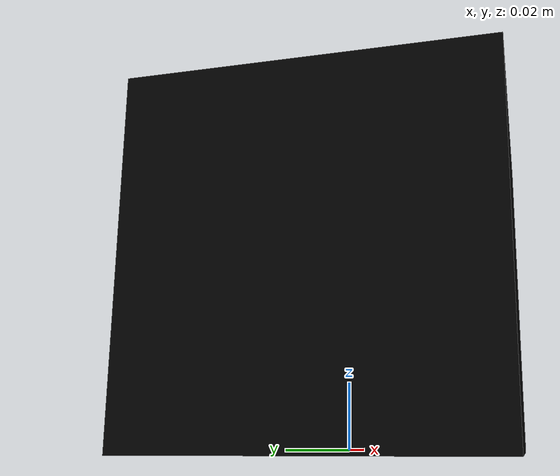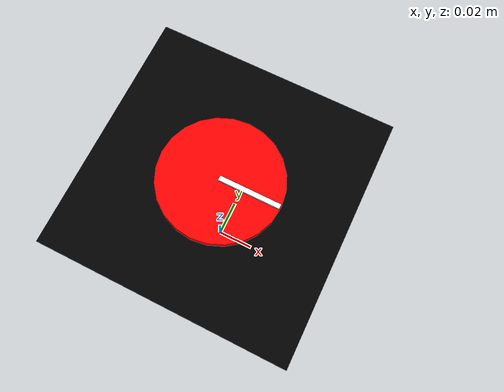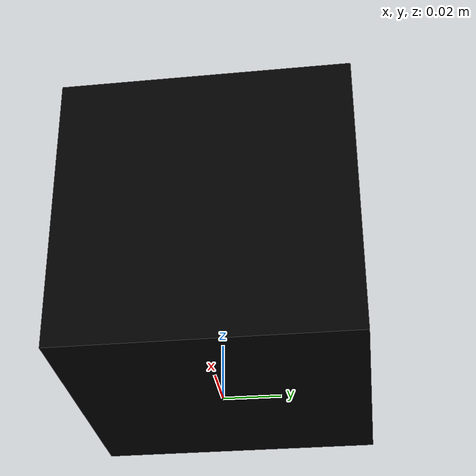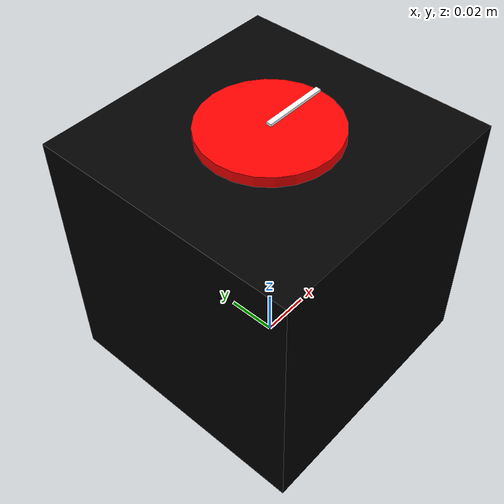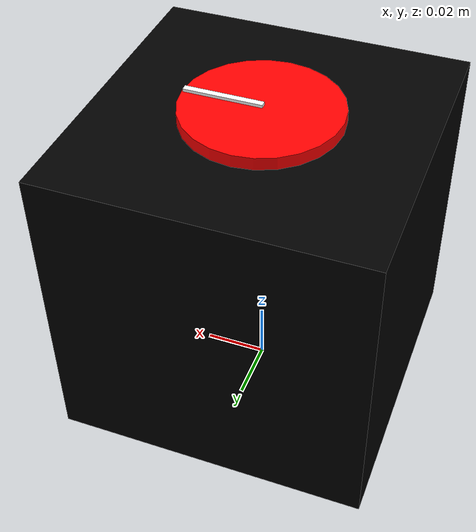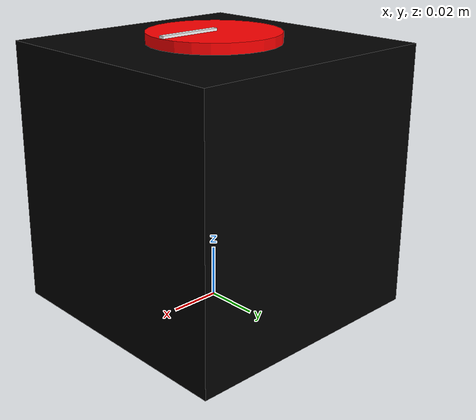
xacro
<?xml version="1.0"?>
<robot name="qube" xmlns:xacro="http://www.ros.org/wiki/xacro">

#Includes the ros2 controller xacro from the qube_driver package
    <xacro:include filename="$(find qube_driver)/ros2_control/qube_driver.ros2_control.xacro"/>

#Includes the description macro of the qube from the qube_description package
    <xacro:include filename="$(find qube_description)/urdf/qube.macro.xacro"/>

#Create a generic link for the world
    <link name="world"/>

#Initialises the qube macro with an empty prefix
    <xacro:qube prefix=""/>

#Creates a joint between the base of the qube and the world
    <joint name="base_joint" type="fixed">
        <parent link="world"/>
        <child link="base_link"/>
        <origin xyz="0 0 0" rpy="0 0 0"/>
    </joint>

#Initialises the qube drive controller from the qube driver package with an empty prefix and gives it the baud_rate, device name and simulation parameters
#defined in the launch file.

    <xacro:qube_driver_ros2_control
        name="qube_driver"
        prefix=""
        baud_rate="$(arg baud_rate)"
        device="$(arg device)"
        simulation="$(arg simulation)" />

</robot>

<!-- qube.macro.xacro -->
<robot xmlns:xacro="http://www.ros.org/wiki/xacro" name="qube">

  <!-- Define Properties for Flexibility -->
  <xacro:property name="stator_size" value="0.102 0.102 0.102"/>
  <xacro:property name="rotor_length" value="0.010"/>
  <xacro:property name="rotor_radius" value="0.025"/>
  <xacro:property name="angle_size" value="0.025 0.002 0.002"/>

  <!-- Define the Macro with a single parameter "prefix" -->
  <xacro:macro name="qube" params="prefix">

    <!-- Links with prefixed names -->
    #Stator link is the black box itself
    <link name="${prefix}stator_link">
      <visual>
        <geometry>
          <box size="${stator_size}"/>
        </geometry>
        <material name="black">
          <color rgba="0 0 0 1"/>
        </material>
      </visual>
    </link>

    #Rotor link is the spinning sylinder on top of the qube
    <link name="${prefix}rotor_link">
      <visual>
        <geometry>
          <cylinder length="${rotor_length}" radius="${rotor_radius}"/>
        </geometry>
        <material name="red">
          <color rgba="1 0 0 1"/>
        </material>
      </visual>
    </link>

    #The angle link is the white indicator line that points in a direction.
    <link name="${prefix}angle_link">
      <visual>
        <geometry>
          <box size="${angle_size}"/>
        </geometry>
        <material name="white">
          <color rgba="1 1 1 1"/>
        </material>
      </visual>
    </link>

    <!-- Joints with prefixed names -->
    #Creates a joint between the black box and the base of the world.
    <joint name="${prefix}stator_joint" type="fixed">
      <parent link="base_link"/>
      <child link="${prefix}stator_link"/>
      <origin xyz="0 0 0.050" rpy="0 0 0"/>
    </joint>

#creates a joint between the black box(stator) and the red sylinder (rotor) which is set to continous to allow for movement of the sylinder simulating rpm.
<joint name="${prefix}motor_joint" type="continuous">
  <parent link="${prefix}stator_link"/>
  <child link="${prefix}rotor_link"/>
  <origin xyz="0 0 0.05" rpy="0 0 0"/>
  <axis xyz="0 0 1"/>
</joint>

#Creates a controll interface so that the controller in the qube_driver can control the motor joint.
    <!-- ros2_control transmission configuration -->
    <ros2_control name="motor_joint" type="transmission_interface/SimpleTransmission">
      <joint name="${prefix}motor_joint">
        <command_interface name="velocity"/>
        <state_interface name="velocity"/>
        <state_interface name="position"/>
      </joint>
    </ros2_control>

#Creates a joint between the white line and the red sylinder, the joint is fixed so that the white line will move with the red sylinder.
    <joint name="${prefix}indicator" type="fixed">
      <parent link="${prefix}rotor_link"/>
      <child link="${prefix}angle_link"/>
      <origin xyz="0.012 0 0.005" rpy="0 0 0"/>
    </joint>

  </xacro:macro>

  <!-- Define Static Links -->
  <link name="base_link"/>

</robot>
